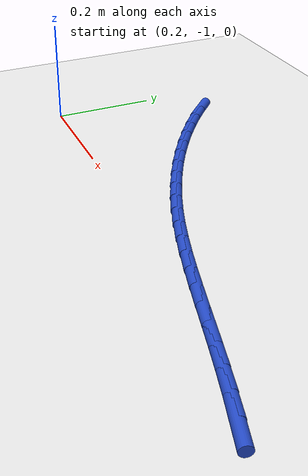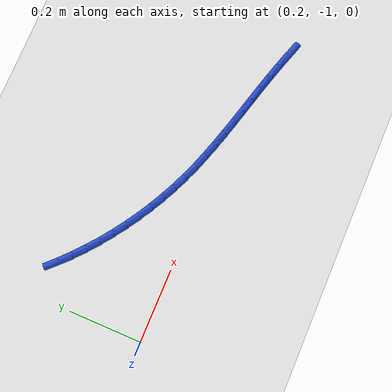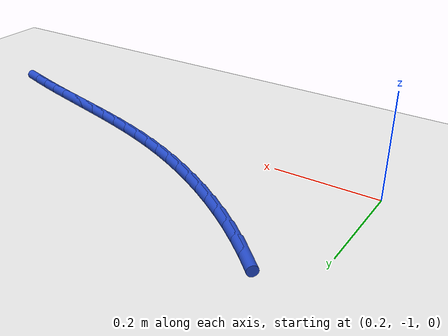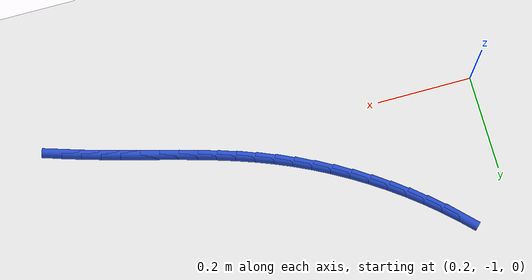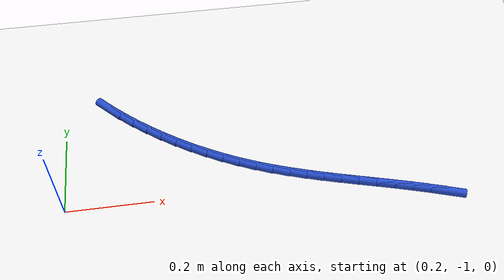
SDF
<sdf version="1.6">
 <world name="default">
  <model name="ground_plane">
   <static>1</static>
   <link name="link">
    <collision name="collision">
     <geometry><plane><normal>0 0 1</normal><size>100 100</size></plane></geometry>
     <surface><friction><ode><mu>100</mu><mu2>50</mu2></ode></friction></surface>
    </collision>
    <visual name="visual">
     <cast_shadows>0</cast_shadows>
     <geometry><plane><normal>0 0 1</normal><size>100 100</size></plane></geometry>
     <material>
      <script><uri>file://media/materials/scripts/gazebo.material</uri><name>Gazebo/WhiteGlow</name></script>
     </material>
    </visual>
   </link>
  </model>
  <model name="line">
   <link name="link_129">
    <pose>1.062818925593895 -1.0664051268069437 0.01 0 1.57 -0.30876841405696537</pose>
    <collision name="collision">
     <geometry><cylinder><radius>0.01</radius><length>0.08</length></cylinder></geometry>
    </collision>
    <visual name="visual">
     <material>
      <script><name>Gazebo/Blue</name><uri>file://media/materials/scripts/gazebo.material</uri></script>
     </material>
     <geometry><cylinder><radius>0.01</radius><length>0.08</length></cylinder></geometry>
    </visual>
   </link>
   <link name="link_130">
    <pose>1.0235208717439885 -1.0538702233759039 0.01 0 1.57 -0.289706020158169</pose>
    <collision name="collision">
     <geometry><cylinder><radius>0.01</radius><length>0.08</length></cylinder></geometry>
    </collision>
    <visual name="visual">
     <material>
      <script><name>Gazebo/Blue</name><uri>file://media/materials/scripts/gazebo.material</uri></script>
     </material>
     <geometry><cylinder><radius>0.01</radius><length>0.08</length></cylinder></geometry>
    </visual>
   </link>
   <link name="link_131">
    <pose>0.9843459610323964 -1.0421924701995327 0.01 0 1.57 -0.27542930570889285</pose>
    <collision name="collision">
     <geometry><cylinder><radius>0.01</radius><length>0.08</length></cylinder></geometry>
    </collision>
    <visual name="visual">
     <material>
      <script><name>Gazebo/Blue</name><uri>file://media/materials/scripts/gazebo.material</uri></script>
     </material>
     <geometry><cylinder><radius>0.01</radius><length>0.08</length></cylinder></geometry>
    </visual>
   </link>
   <link name="link_132">
    <pose>0.9453219144022762 -1.0311638003467984 0.01 0 1.57 -0.2667148105900365</pose>
    <collision name="collision">
     <geometry><cylinder><radius>0.01</radius><length>0.08</length></cylinder></geometry>
    </collision>
    <visual name="visual">
     <material>
      <script><name>Gazebo/Blue</name><uri>file://media/materials/scripts/gazebo.material</uri></script>
     </material>
     <geometry><cylinder><radius>0.01</radius><length>0.08</length></cylinder></geometry>
    </visual>
   </link>
   <link name="link_133">
    <pose>0.9064743649819275 -1.0205496974108443 0.01 0 1.57 -0.2637067521442911</pose>
    <collision name="collision">
     <geometry><cylinder><radius>0.01</radius><length>0.08</length></cylinder></geometry>
    </collision>
    <visual name="visual">
     <material>
      <script><name>Gazebo/Blue</name><uri>file://media/materials/scripts/gazebo.material</uri></script>
     </material>
     <geometry><cylinder><radius>0.01</radius><length>0.08</length></cylinder></geometry>
    </visual>
   </link>
   <link name="link_134">
    <pose>0.8678289458996497 -1.0101156449848139 0.01 0 1.57 -0.26651794961353864</pose>
    <collision name="collision">
     <geometry><cylinder><radius>0.01</radius><length>0.08</length></cylinder></geometry>
    </collision>
    <visual name="visual">
     <material>
      <script><name>Gazebo/Blue</name><uri>file://media/materials/scripts/gazebo.material</uri></script>
     </material>
     <geometry><cylinder><radius>0.01</radius><length>0.08</length></cylinder></geometry>
    </visual>
   </link>
   <link name="link_135">
    <pose>0.8294112902837428 -0.9996271266618505 0.01 0 1.57 -0.27523074283387994</pose>
    <collision name="collision">
     <geometry><cylinder><radius>0.01</radius><length>0.08</length></cylinder></geometry>
    </collision>
    <visual name="visual">
     <material>
      <script><name>Gazebo/Blue</name><uri>file://media/materials/scripts/gazebo.material</uri></script>
     </material>
     <geometry><cylinder><radius>0.01</radius><length>0.08</length></cylinder></geometry>
    </visual>
   </link>
   <link name="link_136">
    <pose>0.7912470312625057 -0.9888496260350967 0.01 0 1.57 -0.28989244386097673</pose>
    <collision name="collision">
     <geometry><cylinder><radius>0.01</radius><length>0.08</length></cylinder></geometry>
    </collision>
    <visual name="visual">
     <material>
      <script><name>Gazebo/Blue</name><uri>file://media/materials/scripts/gazebo.material</uri></script>
     </material>
     <geometry><cylinder><radius>0.01</radius><length>0.08</length></cylinder></geometry>
    </visual>
   </link>
   <link name="link_137">
    <pose>0.7533618019642404 -0.9775486266976977 0.01 0 1.57 -0.310504914256804</pose>
    <collision name="collision">
     <geometry><cylinder><radius>0.01</radius><length>0.08</length></cylinder></geometry>
    </collision>
    <visual name="visual">
     <material>
      <script><name>Gazebo/Blue</name><uri>file://media/materials/scripts/gazebo.material</uri></script>
     </material>
     <geometry><cylinder><radius>0.01</radius><length>0.08</length></cylinder></geometry>
    </visual>
   </link>
   <link name="link_138">
    <pose>0.7157812355172449 -0.9654896122427951 0.01 0 1.57 -0.33700843675732706</pose>
    <collision name="collision">
     <geometry><cylinder><radius>0.01</radius><length>0.08</length></cylinder></geometry>
    </collision>
    <visual name="visual">
     <material>
      <script><name>Gazebo/Blue</name><uri>file://media/materials/scripts/gazebo.material</uri></script>
     </material>
     <geometry><cylinder><radius>0.01</radius><length>0.08</length></cylinder></geometry>
    </visual>
   </link>
   <link name="link_139">
    <pose>0.6785309650498197 -0.952438066263533 0.01 0 1.57 -0.3692608970933051</pose>
    <collision name="collision">
     <geometry><cylinder><radius>0.01</radius><length>0.08</length></cylinder></geometry>
    </collision>
    <visual name="visual">
     <material>
      <script><name>Gazebo/Blue</name><uri>file://media/materials/scripts/gazebo.material</uri></script>
     </material>
     <geometry><cylinder><radius>0.01</radius><length>0.08</length></cylinder></geometry>
    </visual>
   </link>
   <link name="link_140">
    <pose>0.6416366236902646 -0.938159472353055 0.01 0 1.57 -0.4063729283514726</pose>
    <collision name="collision">
     <geometry><cylinder><radius>0.01</radius><length>0.08</length></cylinder></geometry>
    </collision>
    <visual name="visual">
     <material>
      <script><name>Gazebo/Blue</name><uri>file://media/materials/scripts/gazebo.material</uri></script>
     </material>
     <geometry><cylinder><radius>0.01</radius><length>0.08</length></cylinder></geometry>
    </visual>
   </link>
   <link name="link_141">
    <pose>0.605129542480954 -0.922449535908076 0.01 0 1.57 -0.4443917474697428</pose>
    <collision name="collision">
     <geometry><cylinder><radius>0.01</radius><length>0.08</length></cylinder></geometry>
    </collision>
    <visual name="visual">
     <material>
      <script><name>Gazebo/Blue</name><uri>file://media/materials/scripts/gazebo.material</uri></script>
     </material>
     <geometry><cylinder><radius>0.01</radius><length>0.08</length></cylinder></geometry>
    </visual>
   </link>
   <link name="link_142">
    <pose>0.5690745650970412 -0.9052817137255251 0.01 0 1.57 -0.48204308665037776</pose>
    <collision name="collision">
     <geometry><cylinder><radius>0.01</radius><length>0.08</length></cylinder></geometry>
    </collision>
    <visual name="visual">
     <material>
      <script><name>Gazebo/Blue</name><uri>file://media/materials/scripts/gazebo.material</uri></script>
     </material>
     <geometry><cylinder><radius>0.01</radius><length>0.08</length></cylinder></geometry>
    </visual>
   </link>
   <link name="link_143">
    <pose>0.533548747090304 -0.886694234540218 0.01 0 1.57 -0.5194647998303034</pose>
    <collision name="collision">
     <geometry><cylinder><radius>0.01</radius><length>0.08</length></cylinder></geometry>
    </collision>
    <visual name="visual">
     <material>
      <script><name>Gazebo/Blue</name><uri>file://media/materials/scripts/gazebo.material</uri></script>
     </material>
     <geometry><cylinder><radius>0.01</radius><length>0.08</length></cylinder></geometry>
    </visual>
   </link>
   <link name="link_144">
    <pose>0.4986291617070781 -0.8667254209391245 0.01 0 1.57 -0.5567940990706451</pose>
    <collision name="collision">
     <geometry><cylinder><radius>0.01</radius><length>0.08</length></cylinder></geometry>
    </collision>
    <visual name="visual">
     <material>
      <script><name>Gazebo/Blue</name><uri>file://media/materials/scripts/gazebo.material</uri></script>
     </material>
     <geometry><cylinder><radius>0.01</radius><length>0.08</length></cylinder></geometry>
    </visual>
   </link>
   <link name="link_145">
    <pose>0.4643928821936994 -0.8454135955092147 0.01 0 1.57 -0.5941657736121696</pose>
    <collision name="collision">
     <geometry><cylinder><radius>0.01</radius><length>0.08</length></cylinder></geometry>
    </collision>
    <visual name="visual">
     <material>
      <script><name>Gazebo/Blue</name><uri>file://media/materials/scripts/gazebo.material</uri></script>
     </material>
     <geometry><cylinder><radius>0.01</radius><length>0.08</length></cylinder></geometry>
    </visual>
   </link>
   <link name="link_146">
    <pose>0.4309169817965043 -0.8227970808374593 0.01 0 1.57 -0.6317123864977193</pose>
    <collision name="collision">
     <geometry><cylinder><radius>0.01</radius><length>0.08</length></cylinder></geometry>
    </collision>
    <visual name="visual">
     <material>
      <script><name>Gazebo/Blue</name><uri>file://media/materials/scripts/gazebo.material</uri></script>
     </material>
     <geometry><cylinder><radius>0.01</radius><length>0.08</length></cylinder></geometry>
    </visual>
   </link>
   <link name="link_147">
    <pose>0.39827853376182853 -0.798914199510828 0.01 0 1.57 -0.6695644055199358</pose>
    <collision name="collision">
     <geometry><cylinder><radius>0.01</radius><length>0.08</length></cylinder></geometry>
    </collision>
    <visual name="visual">
     <material>
      <script><name>Gazebo/Blue</name><uri>file://media/materials/scripts/gazebo.material</uri></script>
     </material>
     <geometry><cylinder><radius>0.01</radius><length>0.08</length></cylinder></geometry>
    </visual>
   </link>
   <link name="link_148">
    <pose>0.3665546113360097 -0.7738032741162925 0.01 0 1.57 -0.7078502199895484</pose>
    <collision name="collision">
     <geometry><cylinder><radius>0.01</radius><length>0.08</length></cylinder></geometry>
    </collision>
    <visual name="visual">
     <material>
      <script><name>Gazebo/Blue</name><uri>file://media/materials/scripts/gazebo.material</uri></script>
     </material>
     <geometry><cylinder><radius>0.01</radius><length>0.08</length></cylinder></geometry>
    </visual>
   </link>
   <link name="link_149">
    <pose>0.33582228776538303 -0.7475026272408218 0.01 0 1.57 -0.7466959944214948</pose>
    <collision name="collision">
     <geometry><cylinder><radius>0.01</radius><length>0.08</length></cylinder></geometry>
    </collision>
    <visual name="visual">
     <material>
      <script><name>Gazebo/Blue</name><uri>file://media/materials/scripts/gazebo.material</uri></script>
     </material>
     <geometry><cylinder><radius>0.01</radius><length>0.08</length></cylinder></geometry>
    </visual>
   </link>
   <link name="link_150">
    <pose>0.30615863629628515 -0.7200505814713869 0.01 0 1.57 -0.7862253084512211</pose>
    <collision name="collision">
     <geometry><cylinder><radius>0.01</radius><length>0.08</length></cylinder></geometry>
    </collision>
    <visual name="visual">
     <material>
      <script><name>Gazebo/Blue</name><uri>file://media/materials/scripts/gazebo.material</uri></script>
     </material>
     <geometry><cylinder><radius>0.01</radius><length>0.08</length></cylinder></geometry>
    </visual>
   </link>
  </model>
 </world>
</sdf>
